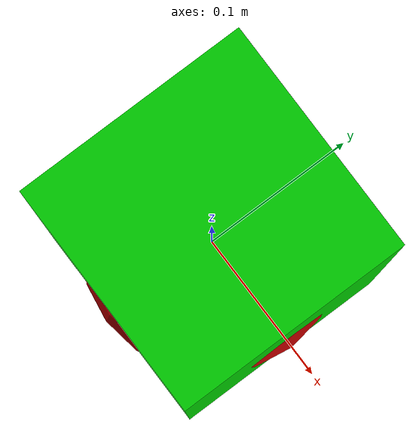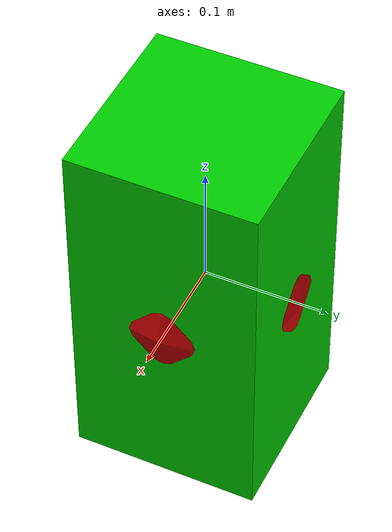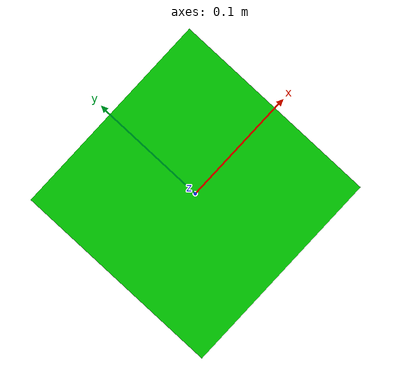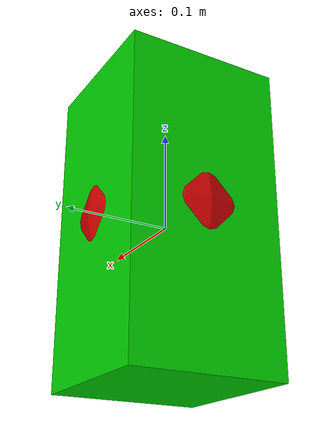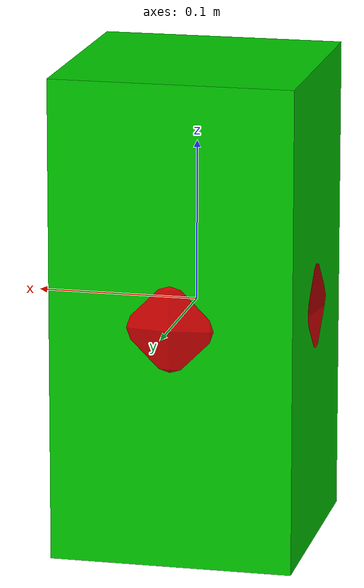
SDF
<?xml version="1.0"?>
<sdf version="1.7">
  <model name="gazebo_humanoid">
    <link name="base_link">
      <inertial>
        <mass>1.0</mass>
        <inertia>
          <ixx>0.01</ixx><ixy>0.0</ixy><ixz>0.0</ixz>
          <iyy>0.01</iyy><iyz>0.0</iyz>
          <izz>0.01</izz>
        </inertia>
      </inertial>
      <visual name="base_visual">
        <geometry><box><size>0.1 0.1 0.2</size></box></geometry>
        <material><diffuse>0 0 0.8 1</diffuse></material>
      </visual>
      <collision name="base_collision">
        <geometry><box><size>0.1 0.1 0.2</size></box></geometry>
      </collision>
    </link>

    <link name="torso_link">
      <inertial>
        <mass>2.0</mass>
        <inertia>
          <ixx>0.05</ixx><ixy>0.0</ixy><ixz>0.0</ixz>
          <iyy>0.05</iyy><iyz>0.0</iyz>
          <izz>0.05</izz>
        </inertia>
      </inertial>
      <visual name="torso_visual">
        <geometry><box><size>0.15 0.15 0.3</size></box></geometry>
        <material><diffuse>0 0.8 0 1</diffuse></material>
      </visual>
      <collision name="torso_collision">
        <geometry><box><size>0.15 0.15 0.3</size></box></geometry>
      </collision>
    </link>

    <joint name="base_to_torso" type="fixed">
      <parent>base_link</parent>
      <child>torso_link</child>
      <pose>0 0 0.25 0 0 0</pose>
    </joint>

    <link name="head_link">
      <inertial>
        <mass>0.5</mass>
        <inertia>
          <ixx>0.005</ixx><ixy>0.0</ixy><ixz>0.0</ixz>
          <iyy>0.005</iyy><iyz>0.0</iyz>
          <izz>0.005</izz>
        </inertia>
      </inertial>
      <visual name="head_visual">
        <geometry><sphere><radius>0.08</radius></sphere></geometry>
        <material><diffuse>0.8 0 0 1</diffuse></material>
      </visual>
      <collision name="head_collision">
        <geometry><sphere><radius>0.08</radius></sphere></geometry>
      </collision>
    </link>

    <joint name="torso_to_head" type="revolute">
      <parent>torso_link</parent>
      <child>head_link</child>
      <pose>0 0 0.2 0 0 0</pose>
      <axis>
        <xyz>0 0 1</xyz>
        <limit lower="-0.5" upper="0.5"/>
      </axis>
    </joint>

    <link name="right_upper_arm_link">
      <inertial>
        <mass>0.3</mass>
        <inertia>
          <ixx>0.001</ixx><ixy>0.0</ixy><ixz>0.0</ixz>
          <iyy>0.001</iyy><iyz>0.0</iyz>
          <izz>0.001</izz>
        </inertia>
      </inertial>
      <visual name="right_upper_arm_visual">
        <geometry><cylinder><radius>0.03</radius><length>0.15</length></cylinder></geometry>
        <material><diffuse>0.8 0.8 0 1</diffuse></material>
      </visual>
      <collision name="right_upper_arm_collision">
        <geometry><cylinder><radius>0.03</radius><length>0.15</length></cylinder></geometry>
      </collision>
    </link>

    <joint name="torso_to_right_upper_arm" type="revolute">
      <parent>torso_link</parent>
      <child>right_upper_arm_link</child>
      <pose>-0.1 0 0.1 0 0 0</pose>
      <axis>
        <xyz>0 1 0</xyz>
        <limit lower="-1.57" upper="1.57"/>
      </axis>
    </joint>

  </model>
</sdf>
